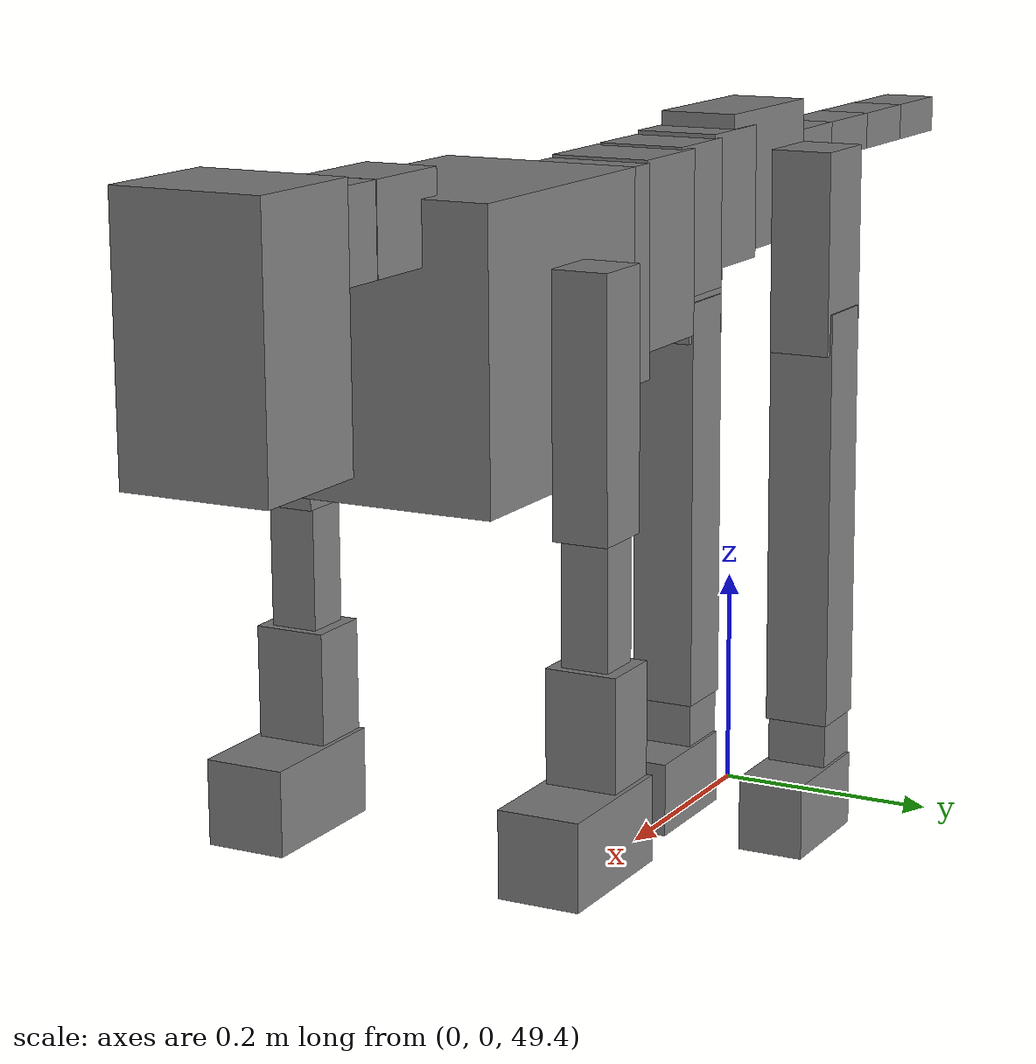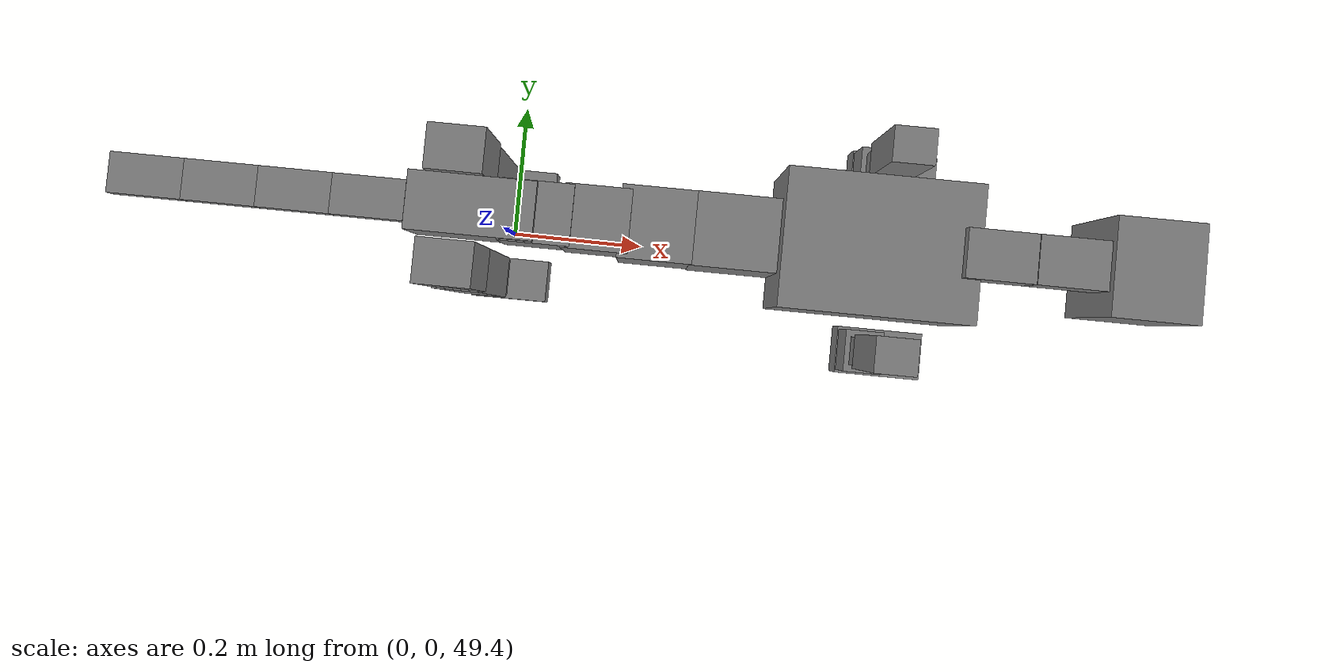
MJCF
<mujoco model="dog">

    <default>
        <joint armature="0.02" stiffness="1" damping="0.2" limited="true"/>
        <geom condim="3" friction="1 0.05 0.05" margin="0.01"/>
        <motor ctrllimited="true" ctrlrange="-1.0 1.0" forcelimited="true" gear="50"/>
    </default>

    <compiler inertiafromgeom="true" angle="radian"/>

    <option timestep="0.016" iterations="50" tolerance="1e-10" solver="Newton" jacobian="dense" cone="pyramidal"/>

    <size nconmax="20000" njmax="60000" nstack="5000000"/>
    <visual>
        <map force="0.1" zfar="30"/>
        <rgba haze="0.15 0.25 0.35 1"/>
        <quality shadowsize="2048"/>
        <global offwidth="800" offheight="800"/>
    </visual>

    <asset>
        <texture type="skybox" builtin="gradient" rgb1="0.3 0.5 0.7" rgb2="0 0 0" width="512" height="512"/>
        <texture name="texplane" type="2d" builtin="checker" rgb1=".2 .3 .4" rgb2=".1 0.15 0.2" width="512" height="512"
                 mark="cross" markrgb=".8 .8 .8"/>
        <texture name="texgeom" type="cube" builtin="flat" mark="cross" width="127" height="1278" rgb1="0.8 0.6 0.4"
                 rgb2="0.8 0.6 0.4" markrgb="1 1 1" random="0.01"/>

        <material name="matplane" reflectance="0.3" texture="texplane" texrepeat="1 1" texuniform="true"/>
        <material name="matgeom" texture="texgeom" texuniform="true" rgba="0.8 0.6 .4 1"/>
    </asset>

    <worldbody>
        <geom name="floor" pos="0 0 0" size="0 0 .25" type="plane" material="matplane" condim="3"/>

        <light directional="false" diffuse=".2 .2 .2" specular="0 0 0" pos="0 0 5" dir="0 0 -1" castshadow="false"/>
        <light mode="targetbodycom" target="torso" directional="false" diffuse=".8 .8 .8" specular="0.3 0.3 0.3"
               pos="0 0 4.0" dir="0 0 -1"/>

        <body name="root" pos="0 0 50">
            <freejoint name="root_1"/>
            <geom type="box" pos="0 0 -0.02" size="0.0774  0.0358  0.063" density="2030"/>

            <body name="spine1" pos="0.054 0 0">
                <joint name="spine1_y" axis="0 1 0" range="0 0.7" limited="true"/>
                <geom type="box" pos="0.02375 0 -0.03" size="0.04375  0.0375  0.05985" density="2030"/>

                <body name="spine2" pos="0.0612 0 0">
                    <joint name="spine2_y" axis="0 1 0" range="-0.15 0.15" limited="true"/>
                    <geom type="box" pos="0.03555  0  -0.04" size="0.04055  0.039  0.06615" density="2030"/>

                    <body name="spine3" pos="0.0730 0 0">
                        <joint name="spine3_y" axis="0 1 0" range="-0.15 0.15" limited="true"/>
                        <geom type="box" pos="0.03555  0  -0.057" size="0.04555  0.0445  0.081" density="2030"/>

                        <body name="spine4" pos="0.0780 0 0">
                            <joint name="spine4_y" axis="0 1 0" range="-0.15 0.15" limited="true"/>
                            <geom type="box" pos="0.05265  0  -0.07" size="0.05265  0.045  0.09135" density="2030"/>

                            <body name="torso" pos="0.1082 0 0">
                                <joint name="torso_y" axis="0 1 0" range="-0.15 0.15" limited="true"/>
                                <geom type="box" pos="0.11925  0  -0.085" size="0.11925  0.085  0.11745"
                                      density="2030"/>

                                <body name="neck1" pos="0.2160  0   0.0180">
                                    <joint name="neck1_y" axis="0 1 0" range="-1.2  -1" limited="true"/>
                                    <geom type="box" pos="0.0423  0  0" size="0.0423  0.03  0.036" density="2325"/>

                                    <body name="neck2" pos="0.0853  0  0">
                                        <joint name="neck2_y" axis="0 1 0" range="0.1  0" limited="true"/>
                                        <geom type="box" pos="0.0423  0  0" size="0.0423  0.03  0.036" density="2325"/>

                                        <body name="head" pos="0.0853  0  0">
                                            <joint name="head_y" axis="0 1 0" range="-0.3  -0.2" limited="true"/>
                                            <geom type="box" pos="0.0531  0  -0.055" size="0.0531  0.06  0.1044"
                                                  density="4030"/>

                                        </body>
                                    </body>
                                </body>

                                <body name="front_shoulder" pos="0.156  0   -0.0480">
                                    <joint name="front_shoulder_y" axis="0 1 0" range="-1 1.5" limited="true"/>
                                    <geom type="box" pos="0 0.13 -0.0767" size="0.0270  0.0230  0.1034" density="1158"/>
                                    <geom type="box" pos="0 -0.13 -0.0767" size="0.0270  0.0230  0.1034"
                                          density="1158"/>

                                    <body name="front_elbow" pos="0  0  -0.1535">
                                        <joint name="front_elbow_y" axis="0 1 0" range="-2 0" limited="true"/>
                                        <geom type="box" pos="0 0.13 -0.0698" size="0.0193  0.0197  0.0698"
                                              density="1081"/>
                                        <geom type="box" pos="0 -0.13 -0.0698" size="0.0193  0.0197  0.0698"
                                              density="1081"/>

                                        <body name="front_wrist" pos="0  0  -0.1397">
                                            <joint name="front_wrist_y" axis="0 1 0" range="-0.2 0" limited="true"/>
                                            <geom type="box" pos="0 0.13 -0.0468" size="0.0267  0.0297  0.0600"
                                                  density="1664"/>
                                            <geom type="box" pos="0 -0.13 -0.0468" size="0.0267  0.0297  0.0600"
                                                  density="1664"/>

                                            <body name="front_finger_end" pos="0  0  -0.0937">
                                                <joint name="front_finger_y" axis="0 1 0" range="-0.4 1"
                                                       limited="true"/>
                                                <geom type="box" pos="0.0338  0.13  -0.0201"
                                                      size="0.0620  0.0338  0.0351" density="1515"/>
                                                <geom type="box" pos="0.0338  -0.13  -0.0201"
                                                      size="0.0620  0.0338  0.0351" density="1515"/>

                                            </body>

                                        </body>
                                    </body>
                                </body>

                            </body>
                        </body>
                    </body>
                </body>
            </body>

            <body name="back_hip" pos="-0.03 0 -0.018">
                <joint name="back_hip_y" axis="0 1 0" range="-1.5 0.3" limited="true"/>
                <geom type="box" pos="0 0.07 -0.0706" size="0.0364  0.0286  0.0934" density="1154"/>
                <geom type="box" pos="0 -0.07 -0.0706" size="0.0364  0.0286  0.0934" density="1154"/>

                <body name="back_knee" pos="0  0  -0.1413">
                    <joint name="back_knee_y" axis="0 1 0" range="0 2.8" limited="true"/>
                    <geom type="box" pos="0 0.07 -0.1804" size="0.0309  0.0305  0.1960" density="1227"/>
                    <geom type="box" pos="0 -0.07 -0.1804" size="0.0309  0.0305  0.1960" density="1227"/>

                    <body name="back_ankle" pos="0  0  -0.3609">
                        <joint name="back_ankle_y" axis="0 1 0" range="-2.2 0" limited="true"/>
                        <geom type="box" pos="0 0.07 -0.0359" size="0.0285  0.0285  0.0471" density="1284"/>
                        <geom type="box" pos="0 -0.07 -0.0359" size="0.0285  0.0285  0.0471" density="1284"/>

                        <body name="back_toe_end" pos="0  0  -0.0718">
                            <joint name="back_toe_y" axis="0 1 0" range="-0.4 1" limited="true"/>
                            <geom type="box" pos="0.0314  0.07  -0.0203" size="0.0576  0.0314  0.0353" density="1515"/>
                            <geom type="box" pos="0.0314  -0.07  -0.0203" size="0.0576  0.0314  0.0353" density="1515"/>

                        </body>
                    </body>
                </body>
            </body>

            <body name="tail1" pos="-0.074 0 -0.006">
                <joint name="tail1_y" axis="0 1 0" range="-0.2 0.2" limited="true"/>
                <geom type="box" pos="-0.0536  0  0" size="0.045  0.025  0.0175" density="1587"/>

                <body name="tail2" pos="-0.09 0 0">
                    <joint name="tail2_y" axis="0 1 0" range="-0.2 0.2" limited="true"/>
                    <geom type="box" pos="-0.0536  0  0" size="0.045  0.025  0.0175" density="1587"/>

                    <body name="tail3" pos="-0.09 0 0">
                        <joint name="tail3_y" axis="0 1 0" range="-0.2 0.2" limited="true"/>
                        <geom type="box" pos="-0.0536  0  0" size="0.045  0.025  0.0175" density="1587"/>

                        <body name="tail4" pos="-0.09 0 0">
                            <joint name="tail4_y" axis="0 1 0" range="-0.2 0.2" limited="true"/>
                            <geom type="box" pos="-0.0536  0  0" size="0.045  0.025  0.0175" density="1587"/>

                        </body>
                    </body>
                </body>
            </body>
        </body>
    </worldbody>

    <actuator>
        <motor joint="spine1_y" forcerange="-150 150     "/>
        <motor joint="spine2_y" forcerange="-150 150     "/>
        <motor joint="spine3_y" forcerange="-150 150     "/>
        <motor joint="spine4_y" forcerange="-150 150     "/>
        <motor joint="torso_y" forcerange="-150 150     "/>
        <motor joint="neck1_y" forcerange="-100 100       "/>
        <motor joint="neck2_y" forcerange="-100 100       "/>
        <motor joint="head_y" forcerange="-150 150       "/>
        <motor joint="front_shoulder_y" forcerange="-143.52 110.09"/>
        <motor joint="front_elbow_y" forcerange="-111.57 131.81"/>
        <motor joint="front_wrist_y" forcerange="-143.59 93.90"/>
        <motor joint="front_finger_y" forcerange="-41.70 98.59"/>
        <motor joint="back_hip_y" forcerange="-368.35 212.79"/>
        <motor joint="back_knee_y" forcerange="-306.34 337.09"/>
        <motor joint="back_angle_y" forcerange="-107.46 248.90"/>
        <motor joint="back_toe_y" forcerange="-104.15 67.00"/>
        <motor joint="tail1_y" forcerange="-50 50     "/>
        <motor joint="tail2_y" forcerange="-50 50     "/>
        <motor joint="tail3_y" forcerange="-50 50     "/>
        <motor joint="tail4_y" forcerange="-50 50     "/>
    </actuator>
</mujoco>
